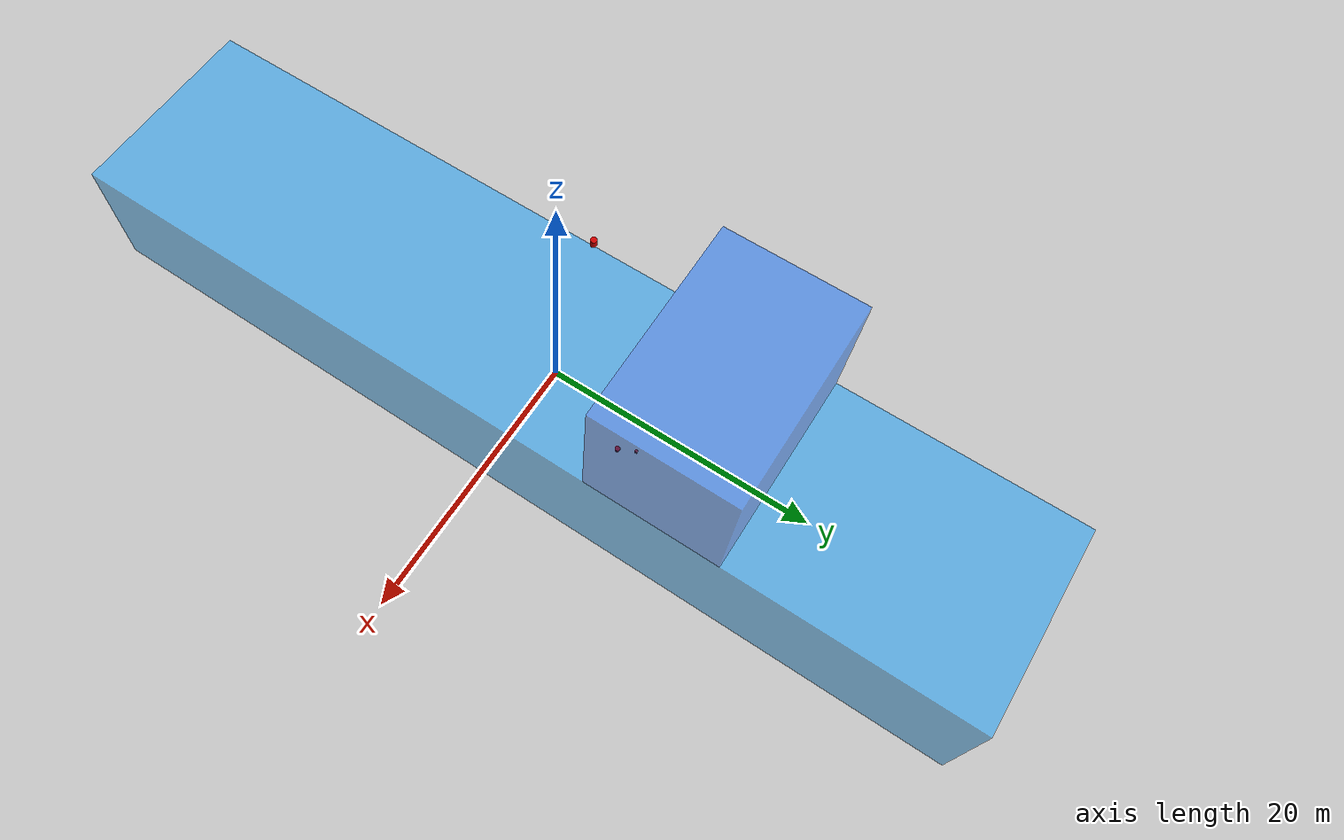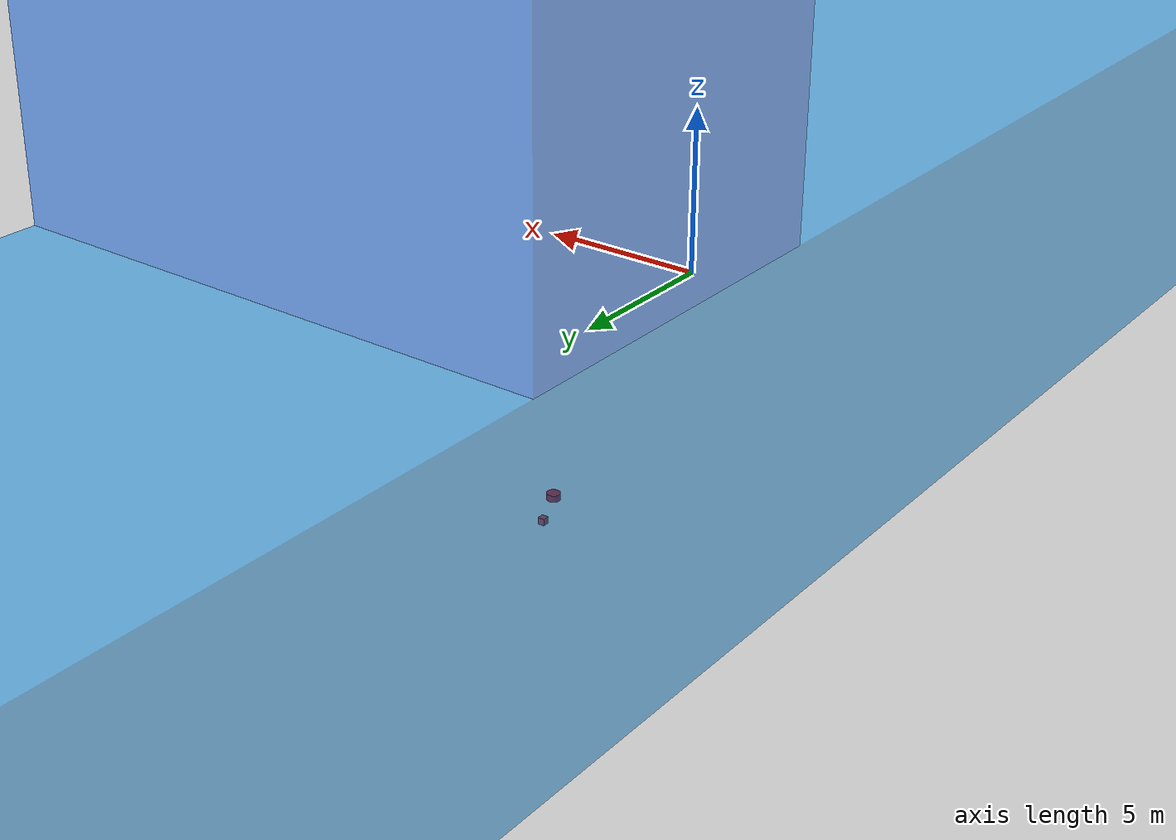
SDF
<?xml version='1.0'?>
<sdf version='1.6'>

  <model name='ship'>

    <link name='hull'>
      <pose frame=''>0 0 0 0 -0 0</pose>
      <frame name="hull_f" />
      <visual name='hull_visual'>
        <pose frame=''>0 0 0 0 -0 0</pose>
        <geometry>
          <box>
            <size>15 70 10</size>
          </box>
        </geometry>
        <material>
          <ambient>0 0.6 1 0.5</ambient>
          <diffuse>0 0.6 1 0.5</diffuse>
          <specular>0 0.6 1 0.5</specular>
          <emissive>0 0.6 1 0.5</emissive>
        </material>
      </visual>
      <collision name='hull_collision'>
        <pose frame=''>0 0 0 0 0 0</pose>
        <geometry>
          <box>
            <size>15 70 10</size>
          </box>
        </geometry>
      </collision>
      <gravity>false</gravity>
    </link>

    <link name='bridge'>
      <pose frame=''>0 12 10 0 -0 0</pose>
      <gravity>0</gravity>
      <visual name='visual'>
        <geometry>
          <box>
            <size>15 10 10</size>
          </box>
        </geometry>
        <material>
          <ambient>0 0.4 1 0.5</ambient>
          <diffuse>0 0.4 1 0.5</diffuse>
          <specular>0 0.4 1 0.5</specular>
          <emissive>0 0.4 1 0.5</emissive>
        </material>
        <cast_shadows>1</cast_shadows>
        <transparency>0.5</transparency>
      </visual>
      <collision name='collision'>

        <max_contacts>10</max_contacts>
        <pose frame=''>0 0 0 0 -0 0</pose>
        <geometry>
          <box>
            <size>15 10 10</size>
          </box>
        </geometry>
      </collision>
      <gravity>false</gravity>
    </link>

    <joint name="hull_bridge" type="fixed">
    	<pose frame=''>0 12 10 0 -0 0</pose>
    	<parent>hull</parent>
    	<child>bridge</child>
    	<frame name="hull_f" />
    </joint>

    <link name='GPS'>
      <pose frame=''>0 2.5 19 0 0 0</pose>
        <visual name="visual">
          <pose>0.0 0.0 0.0 0.0 0.0 0.0</pose>
          <geometry>
            <cylinder>
              <radius>0.2</radius>
              <length>0.5</length>
            </cylinder>
          </geometry>
          <cast_shadows>true</cast_shadows>
          <laser_retro>100.0</laser_retro>
          <material>
	        <ambient>.8 0 0 1</ambient>
            <diffuse>.8 0 0 1</diffuse>
            <specular>.8 0 0 1</specular>
            <emissive>.8 0 0 1</emissive>
          </material>
        </visual>

    	<collision name="collision">
          <pose>0.0 0.0 0.0 0.0 0.0 0.0</pose>
          <max_contacts>250</max_contacts>
          <geometry>
            <cylinder>
              <radius>0.2</radius>
              <length>0.5</length>
            </cylinder>
          </geometry>
        </collision>

        <sensor type="sonar" name="gps">
          <plugin filename="libgps_plugin.so" name="gps_plugin">
            <robotNamespace>ship</robotNamespace>
          	<topicName>ship_gps</topicName>
            <updateRate>1</updateRate> <!--Hz-->
          	<horizStdDev>1</horizStdDev>
            <vertStdDev>5</vertStdDev>
          	<alwaysOn>true</alwaysOn>
          </plugin>
        </sensor>

        <gravity>false</gravity>
        <self_collide>true</self_collide>
        <kinematic>false</kinematic>
      </link>

    <joint name="hull_GPS" type="fixed">
    	<pose>0 2.5 19 0 -0 0</pose>
    	<parent>hull</parent>
    	<child>GPS</child>
    	<frame name="hull_GPS" />
    </joint>

    <link name="USBL">
        <pose>0.6 5.75 -5 0.0 0.0 0.0</pose>
        <visual name="visual_box">
          <pose>0.0 0.0 0.0 0.0 0.0 0.0</pose>
          <geometry>
            <cylinder>
              <radius>0.2</radius>
              <length>0.2</length>
            </cylinder>
          </geometry>
          <cast_shadows>true</cast_shadows>
          <laser_retro>100.0</laser_retro>
          <material>
	        <ambient>.8 0 0 1</ambient>
            <diffuse>.8 0 0 1</diffuse>
            <specular>.8 0 0 1</specular>
            <emissive>.8 0 0 1</emissive>
          </material>
        </visual>

    	<collision name="collision_box">
          <pose>0.0 0.0 0.0 0.0 0.0 0.0</pose>
          <max_contacts>250</max_contacts>
          <geometry>
            <cylinder>
              <radius>0.2</radius>
              <length>0.2</length>
            </cylinder>
          </geometry>
        </collision>

        <sensor type="sonar" name="usbl">
          <plugin filename="libusbl_plugin.so" name="usbl_plugin">
            <robotNamespace>ship</robotNamespace>
          	<topicName>usbl</topicName>
            <beaconLinkName>beacon</beaconLinkName>
            <updateRate>0.5</updateRate> <!--Hz-->
          	<posAccuracy>0.002</posAccuracy>	<!--iXblue Posidonia is 0.2% slant range-->
            <alwaysOn>true</alwaysOn>
          </plugin>
          </sensor>

        <gravity>false</gravity>
        <self_collide>true</self_collide>
        <kinematic>false</kinematic>
      </link>

    <joint name="hull_USBL" type="fixed">
    	<pose>0 2.5 -5 0 -0 0</pose>
    	<parent>hull</parent>
    	<child>USBL</child>
    	<frame name="hull_GPS" />
    </joint>

    <link name="IMU">
    	<pose>0 7 -5 0 0 0</pose>
      <collision name="collision">
        <pose>0 0 0 0 0 0</pose>
        <geometry>
          <box>
            <size>0.2 0.2 0.2</size>
          </box>
        </geometry>
      </collision>
      <visual name="visual">
        <pose>0 0 0 0 0 0</pose>
        <geometry>
          <box>
            <size>0.2 0.2 0.2</size>
          </box>
        </geometry>
		<material>
          <script>
            <name>Gazebo/Red</name>
            <uri>__default__</uri>
          </script>
        </material>
      </visual>

        <gravity>false</gravity>
        <self_collide>true</self_collide>
        <kinematic>false</kinematic>
    </link>

    <joint name="hull_IMU" type="fixed">
    	<pose>0 7 -5 0 -0 0</pose>
    	<parent>hull</parent>
    	<child>IMU</child>
    	<frame name="hull_GPS" />
    </joint>

    	<plugin name="imu_plugin" filename="libhector_gazebo_ros_imu.so">
		<robotNamespace>ship</robotNamespace>
		<updateRate>10.0</updateRate>
		<bodyName>IMU</bodyName>
		<topicName>ship_imu</topicName>
		<accelDrift>0.00 0.00 0.00</accelDrift>
		<accelGaussianNoise>0.00 0.00 0.00</accelGaussianNoise>
		<rateDrift>0.00 0.00 0.00</rateDrift>
		<rateGaussianNoise>0.00 0.00 0.00 </rateGaussianNoise>
		<headingDrift>0.00</headingDrift>
		<headingGaussianNoise>0.00</headingGaussianNoise>
		</plugin>

    <static>false</static>
  </model>
</sdf>
